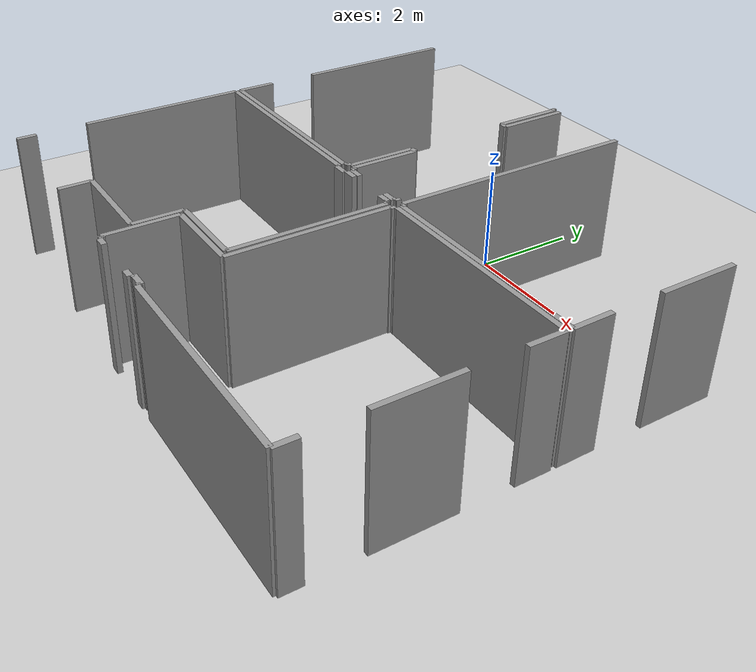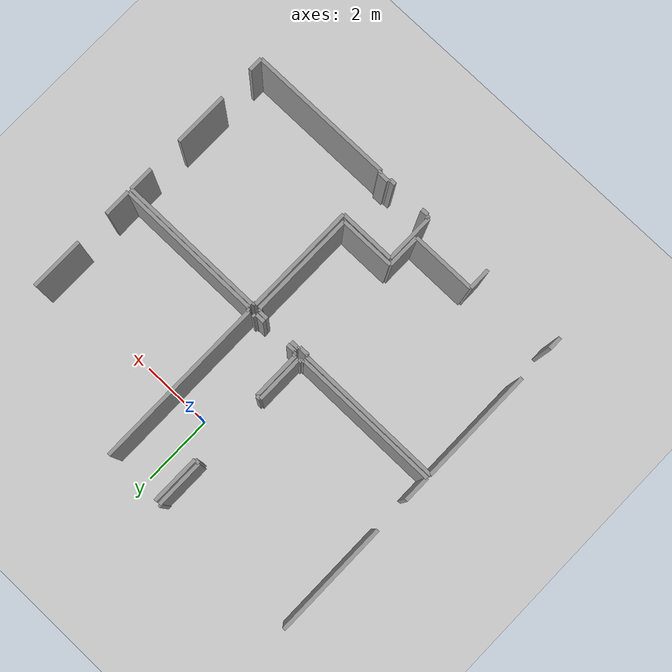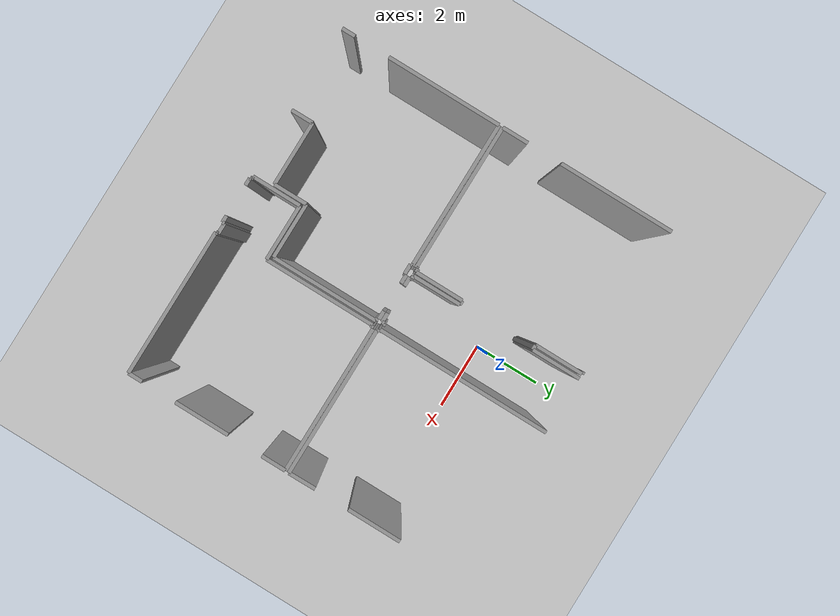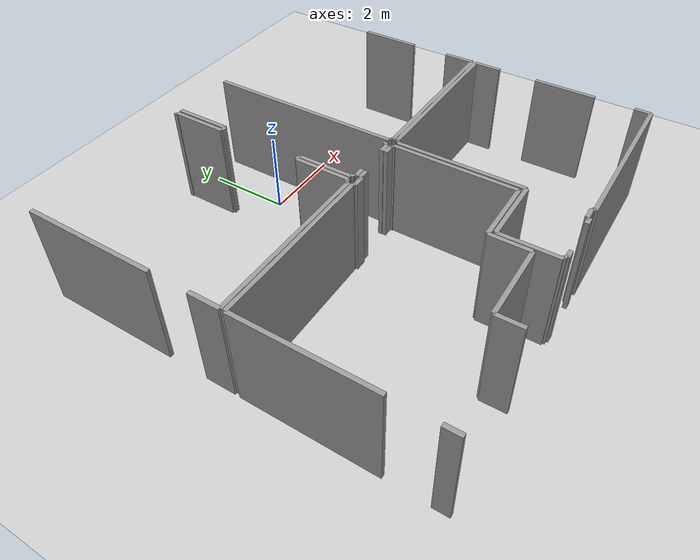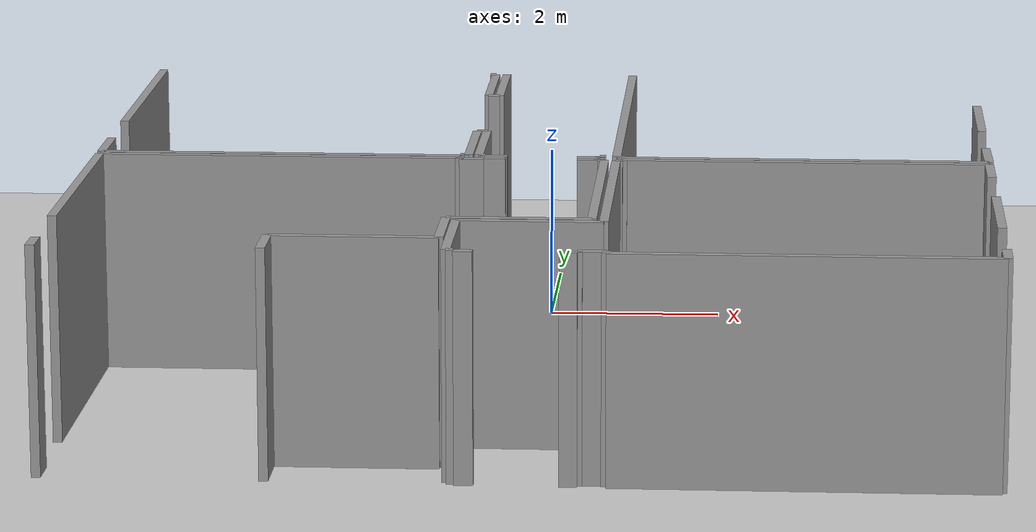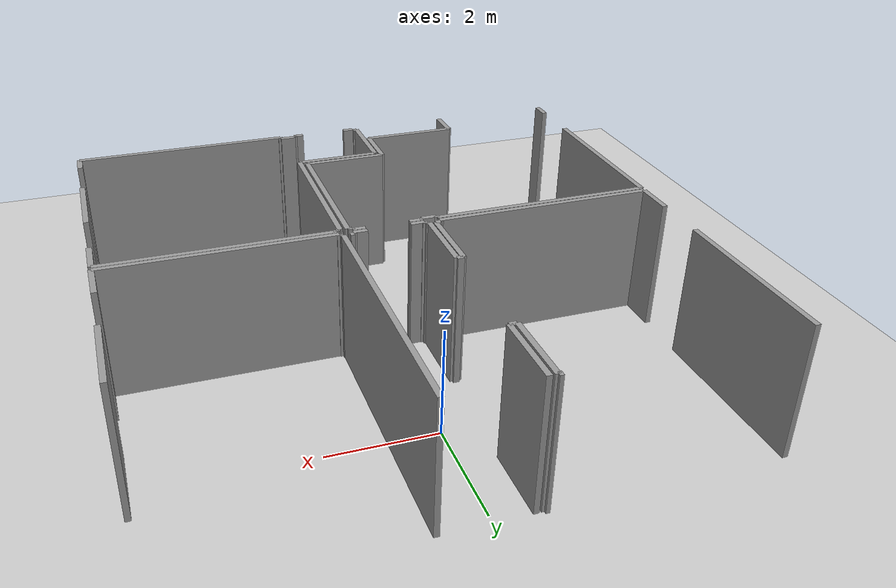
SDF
<sdf version="1.6">
 <world name="default">
  <model name="ground_plane">
   <static>1</static>
   <link name="link">
    <collision name="collision">
     <geometry><plane><normal>0 0 1</normal><size>100 100</size></plane></geometry>
     <surface><friction><ode><mu>100</mu><mu2>50</mu2></ode></friction></surface>
    </collision>
    <visual name="visual">
     <cast_shadows>0</cast_shadows>
     <geometry><plane><normal>0 0 1</normal><size>100 100</size></plane></geometry>
     <material>
      <script><uri>file://media/materials/scripts/gazebo.material</uri><name>Gazebo/Grey</name></script>
     </material>
    </visual>
   </link>
  </model>
  <model name="50009419">
   <static>1</static>
   <link name="Wall_42">
    <collision name="Wall_42_Collision">
     <geometry><box><size>0.260232248239 0.1 2.5</size></box></geometry>
     <pose>0.13011612412 0 1.25 0 0 0</pose>
    </collision>
    <visual name="Wall_42_Visual">
     <pose>0.13011612412 0 1.25 0 0 0</pose>
     <geometry><box><size>0.260232248239 0.1 2.5</size></box></geometry>
     <material>
      <script><uri>file://media/materials/scripts/gazebo.material</uri><name>Gazebo/Grey</name></script>
      <ambient>1 1 1 1</ambient>
     </material>
    </visual>
    <pose>5.69395266197 -12.6954756012 0 0 0 3.14159265359</pose>
   </link>
   <link name="Wall_43">
    <collision name="Wall_43_Collision">
     <geometry><box><size>0.255409607209 0.1 2.5</size></box></geometry>
     <pose>0.127704803604 0 1.25 0 0 0</pose>
    </collision>
    <visual name="Wall_43_Visual">
     <pose>0.127704803604 0 1.25 0 0 0</pose>
     <geometry><box><size>0.255409607209 0.1 2.5</size></box></geometry>
     <material>
      <script><uri>file://media/materials/scripts/gazebo.material</uri><name>Gazebo/Grey</name></script>
      <ambient>1 1 1 1</ambient>
     </material>
    </visual>
    <pose>4.64312456374 -12.6954756012 0 0 0 3.14159265359</pose>
   </link>
   <link name="Wall_44">
    <collision name="Wall_44_Collision">
     <geometry><box><size>0.0626943333968 0.1 2.5</size></box></geometry>
     <pose>0.0313471666984 0 1.25 0 0 0</pose>
    </collision>
    <visual name="Wall_44_Visual">
     <pose>0.0313471666984 0 1.25 0 0 0</pose>
     <geometry><box><size>0.0626943333968 0.1 2.5</size></box></geometry>
     <material>
      <script><uri>file://media/materials/scripts/gazebo.material</uri><name>Gazebo/Grey</name></script>
      <ambient>1 1 1 1</ambient>
     </material>
    </visual>
    <pose>4.38771495653 -12.6954756012 0 0 0 1.57079632679</pose>
   </link>
   <link name="Wall_45">
    <collision name="Wall_45_Collision">
     <geometry><box><size>0.0741163779428 0.1 2.5</size></box></geometry>
     <pose>0.0370581889714 0 1.25 0 0 0</pose>
    </collision>
    <visual name="Wall_45_Visual">
     <pose>0.0370581889714 0 1.25 0 0 0</pose>
     <geometry><box><size>0.0741163779428 0.1 2.5</size></box></geometry>
     <material>
      <script><uri>file://media/materials/scripts/gazebo.material</uri><name>Gazebo/Grey</name></script>
      <ambient>1 1 1 1</ambient>
     </material>
    </visual>
    <pose>4.38771495653 -12.6327812678 0 0 0 3.14159265359</pose>
   </link>
   <link name="Wall_46">
    <collision name="Wall_46_Collision">
     <geometry><box><size>1.34824544705 0.1 2.5</size></box></geometry>
     <pose>0.674122723523 0 1.25 0 0 0</pose>
    </collision>
    <visual name="Wall_46_Visual">
     <pose>0.674122723523 0 1.25 0 0 0</pose>
     <geometry><box><size>1.34824544705 0.1 2.5</size></box></geometry>
     <material>
      <script><uri>file://media/materials/scripts/gazebo.material</uri><name>Gazebo/Grey</name></script>
      <ambient>1 1 1 1</ambient>
     </material>
    </visual>
    <pose>4.31359857859 -12.6327812678 0 0 0 1.57079632679</pose>
   </link>
   <link name="Wall_47">
    <collision name="Wall_47_Collision">
     <geometry><box><size>0.115172282505 0.1 2.5</size></box></geometry>
     <pose>0.0575861412526 0 1.25 0 0 0</pose>
    </collision>
    <visual name="Wall_47_Visual">
     <pose>0.0575861412526 0 1.25 0 0 0</pose>
     <geometry><box><size>0.115172282505 0.1 2.5</size></box></geometry>
     <material>
      <script><uri>file://media/materials/scripts/gazebo.material</uri><name>Gazebo/Grey</name></script>
      <ambient>1 1 1 1</ambient>
     </material>
    </visual>
    <pose>4.31359857859 -11.2845358208 0 0 0 3.14159265359</pose>
   </link>
   <link name="Wall_48">
    <collision name="Wall_48_Collision">
     <geometry><box><size>1.33936163462 0.1 2.5</size></box></geometry>
     <pose>0.669680817311 0 1.25 0 0 0</pose>
    </collision>
    <visual name="Wall_48_Visual">
     <pose>0.669680817311 0 1.25 0 0 0</pose>
     <geometry><box><size>1.33936163462 0.1 2.5</size></box></geometry>
     <material>
      <script><uri>file://media/materials/scripts/gazebo.material</uri><name>Gazebo/Grey</name></script>
      <ambient>1 1 1 1</ambient>
     </material>
    </visual>
    <pose>4.19842629608 -11.2845358208 0 0 0 -1.57079632679</pose>
   </link>
   <link name="Wall_49">
    <collision name="Wall_49_Collision">
     <geometry><box><size>0.0930896630497 0.1 2.5</size></box></geometry>
     <pose>0.0465448315248 0 1.25 0 0 0</pose>
    </collision>
    <visual name="Wall_49_Visual">
     <pose>0.0465448315248 0 1.25 0 0 0</pose>
     <geometry><box><size>0.0930896630497 0.1 2.5</size></box></geometry>
     <material>
      <script><uri>file://media/materials/scripts/gazebo.material</uri><name>Gazebo/Grey</name></script>
      <ambient>1 1 1 1</ambient>
     </material>
    </visual>
    <pose>4.19842629608 -12.6238974554 0 0 0 3.14159265359</pose>
   </link>
   <link name="Wall_50">
    <collision name="Wall_50_Collision">
     <geometry><box><size>0.063075068215 0.1 2.5</size></box></geometry>
     <pose>0.0315375341075 0 1.25 0 0 0</pose>
    </collision>
    <visual name="Wall_50_Visual">
     <pose>0.0315375341075 0 1.25 0 0 0</pose>
     <geometry><box><size>0.063075068215 0.1 2.5</size></box></geometry>
     <material>
      <script><uri>file://media/materials/scripts/gazebo.material</uri><name>Gazebo/Grey</name></script>
      <ambient>1 1 1 1</ambient>
     </material>
    </visual>
    <pose>4.10533663304 -12.6238974554 0 0 0 -1.57079632679</pose>
   </link>
   <link name="Wall_51">
    <collision name="Wall_51_Collision">
     <geometry><box><size>4.09759502507 0.1 2.5</size></box></geometry>
     <pose>2.04879751253 0 1.25 0 0 0</pose>
    </collision>
    <visual name="Wall_51_Visual">
     <pose>2.04879751253 0 1.25 0 0 0</pose>
     <geometry><box><size>4.09759502507 0.1 2.5</size></box></geometry>
     <material>
      <script><uri>file://media/materials/scripts/gazebo.material</uri><name>Gazebo/Grey</name></script>
      <ambient>1 1 1 1</ambient>
     </material>
    </visual>
    <pose>4.10533663304 -12.6869725236 0 0 0 3.14159265359</pose>
   </link>
   <link name="Wall_52">
    <collision name="Wall_52_Collision">
     <geometry><box><size>0.736023859382 0.1 2.5</size></box></geometry>
     <pose>0.368011929691 0 1.25 0 0 0</pose>
    </collision>
    <visual name="Wall_52_Visual">
     <pose>0.368011929691 0 1.25 0 0 0</pose>
     <geometry><box><size>0.736023859382 0.1 2.5</size></box></geometry>
     <material>
      <script><uri>file://media/materials/scripts/gazebo.material</uri><name>Gazebo/Grey</name></script>
      <ambient>1 1 1 1</ambient>
     </material>
    </visual>
    <pose>0.00774160797005 -12.6869725236 0 0 0 1.57079632679</pose>
   </link>
   <link name="Wall_53">
    <collision name="Wall_53_Collision">
     <geometry><box><size>3.2217145758 0.1 2.5</size></box></geometry>
     <pose>1.6108572879 0 1.25 0 0 0</pose>
    </collision>
    <visual name="Wall_53_Visual">
     <pose>1.6108572879 0 1.25 0 0 0</pose>
     <geometry><box><size>3.2217145758 0.1 2.5</size></box></geometry>
     <material>
      <script><uri>file://media/materials/scripts/gazebo.material</uri><name>Gazebo/Grey</name></script>
      <ambient>1 1 1 1</ambient>
     </material>
    </visual>
    <pose>0.00774160797005 -10.9786153944 0 0 0 1.57079632679</pose>
   </link>
   <link name="Wall_56">
    <collision name="Wall_56_Collision">
     <geometry><box><size>0.0698648391395 0.1 2.5</size></box></geometry>
     <pose>0.0349324195698 0 1.25 0 0 0</pose>
    </collision>
    <visual name="Wall_56_Visual">
     <pose>0.0349324195698 0 1.25 0 0 0</pose>
     <geometry><box><size>0.0698648391395 0.1 2.5</size></box></geometry>
     <material>
      <script><uri>file://media/materials/scripts/gazebo.material</uri><name>Gazebo/Grey</name></script>
      <ambient>1 1 1 1</ambient>
     </material>
    </visual>
    <pose>4.11117456691 -7.80639634495 0 0 0 0.0</pose>
   </link>
   <link name="Wall_57">
    <collision name="Wall_57_Collision">
     <geometry><box><size>1.35027603274 0.1 2.5</size></box></geometry>
     <pose>0.675138016372 0 1.25 0 0 0</pose>
    </collision>
    <visual name="Wall_57_Visual">
     <pose>0.675138016372 0 1.25 0 0 0</pose>
     <geometry><box><size>1.35027603274 0.1 2.5</size></box></geometry>
     <material>
      <script><uri>file://media/materials/scripts/gazebo.material</uri><name>Gazebo/Grey</name></script>
      <ambient>1 1 1 1</ambient>
     </material>
    </visual>
    <pose>4.18103940605 -7.80639634495 0 0 0 -1.57079632679</pose>
   </link>
   <link name="Wall_58">
    <collision name="Wall_58_Collision">
     <geometry><box><size>0.132495716733 0.1 2.5</size></box></geometry>
     <pose>0.0662478583666 0 1.25 0 0 0</pose>
    </collision>
    <visual name="Wall_58_Visual">
     <pose>0.0662478583666 0 1.25 0 0 0</pose>
     <geometry><box><size>0.132495716733 0.1 2.5</size></box></geometry>
     <material>
      <script><uri>file://media/materials/scripts/gazebo.material</uri><name>Gazebo/Grey</name></script>
      <ambient>1 1 1 1</ambient>
     </material>
    </visual>
    <pose>4.18103940605 -9.15667237769 0 0 0 0.0</pose>
   </link>
   <link name="Wall_59">
    <collision name="Wall_59_Collision">
     <geometry><box><size>1.35655815724 0.1 2.5</size></box></geometry>
     <pose>0.678279078622 0 1.25 0 0 0</pose>
    </collision>
    <visual name="Wall_59_Visual">
     <pose>0.678279078622 0 1.25 0 0 0</pose>
     <geometry><box><size>1.35655815724 0.1 2.5</size></box></geometry>
     <material>
      <script><uri>file://media/materials/scripts/gazebo.material</uri><name>Gazebo/Grey</name></script>
      <ambient>1 1 1 1</ambient>
     </material>
    </visual>
    <pose>4.31353512279 -9.15667237769 0 0 0 1.57079632679</pose>
   </link>
   <link name="Wall_67">
    <collision name="Wall_67_Collision">
     <geometry><box><size>0.0685957230789 0.1 2.5</size></box></geometry>
     <pose>0.0342978615394 0 1.25 0 0 0</pose>
    </collision>
    <visual name="Wall_67_Visual">
     <pose>0.0342978615394 0 1.25 0 0 0</pose>
     <geometry><box><size>0.0685957230789 0.1 2.5</size></box></geometry>
     <material>
      <script><uri>file://media/materials/scripts/gazebo.material</uri><name>Gazebo/Grey</name></script>
      <ambient>1 1 1 1</ambient>
     </material>
    </visual>
    <pose>5.75924868329 -12.626943334 0 0 0 3.14159265359</pose>
   </link>
   <link name="Wall_68">
    <collision name="Wall_68_Collision">
     <geometry><box><size>0.0686116585549 0.1 2.5</size></box></geometry>
     <pose>0.0343058292775 0 1.25 0 0 0</pose>
    </collision>
    <visual name="Wall_68_Visual">
     <pose>0.0343058292775 0 1.25 0 0 0</pose>
     <geometry><box><size>0.0686116585549 0.1 2.5</size></box></geometry>
     <material>
      <script><uri>file://media/materials/scripts/gazebo.material</uri><name>Gazebo/Grey</name></script>
      <ambient>1 1 1 1</ambient>
     </material>
    </visual>
    <pose>5.69065296021 -12.626943334 0 0 0 -1.52268533337</pose>
   </link>
   <link name="Wall_69">
    <collision name="Wall_69_Collision">
     <geometry><box><size>4.13979313408 0.1 2.5</size></box></geometry>
     <pose>2.06989656704 0 1.25 0 0 0</pose>
    </collision>
    <visual name="Wall_69_Visual">
     <pose>2.06989656704 0 1.25 0 0 0</pose>
     <geometry><box><size>4.13979313408 0.1 2.5</size></box></geometry>
     <material>
      <script><uri>file://media/materials/scripts/gazebo.material</uri><name>Gazebo/Grey</name></script>
      <ambient>1 1 1 1</ambient>
     </material>
    </visual>
    <pose>10.0811599721 -12.6976330985 0 0 0 3.14159265359</pose>
   </link>
   <link name="Wall_70">
    <collision name="Wall_70_Collision">
     <geometry><box><size>0.0643441842757 0.1 2.5</size></box></geometry>
     <pose>0.0321720921378 0 1.25 0 0 0</pose>
    </collision>
    <visual name="Wall_70_Visual">
     <pose>0.0321720921378 0 1.25 0 0 0</pose>
     <geometry><box><size>0.0643441842757 0.1 2.5</size></box></geometry>
     <material>
      <script><uri>file://media/materials/scripts/gazebo.material</uri><name>Gazebo/Grey</name></script>
      <ambient>1 1 1 1</ambient>
     </material>
    </visual>
    <pose>5.941366838 -12.6976330985 0 0 0 1.57079632679</pose>
   </link>
   <link name="Wall_71">
    <collision name="Wall_71_Collision">
     <geometry><box><size>0.0607272035028 0.1 2.5</size></box></geometry>
     <pose>0.0303636017514 0 1.25 0 0 0</pose>
    </collision>
    <visual name="Wall_71_Visual">
     <pose>0.0303636017514 0 1.25 0 0 0</pose>
     <geometry><box><size>0.0607272035028 0.1 2.5</size></box></geometry>
     <material>
      <script><uri>file://media/materials/scripts/gazebo.material</uri><name>Gazebo/Grey</name></script>
      <ambient>1 1 1 1</ambient>
     </material>
    </visual>
    <pose>5.941366838 -12.6332889143 0 0 0 3.14159265359</pose>
   </link>
   <link name="Wall_72">
    <collision name="Wall_72_Collision">
     <geometry><box><size>4.83222285678 0.1 2.5</size></box></geometry>
     <pose>2.41611142839 0 1.25 0 0 0</pose>
    </collision>
    <visual name="Wall_72_Visual">
     <pose>2.41611142839 0 1.25 0 0 0</pose>
     <geometry><box><size>4.83222285678 0.1 2.5</size></box></geometry>
     <material>
      <script><uri>file://media/materials/scripts/gazebo.material</uri><name>Gazebo/Grey</name></script>
      <ambient>1 1 1 1</ambient>
     </material>
    </visual>
    <pose>5.88063963449 -12.6332889143 0 0 0 1.57079632679</pose>
   </link>
   <link name="Wall_78">
    <collision name="Wall_78_Collision">
     <geometry><box><size>1.5019988578 0.1 2.5</size></box></geometry>
     <pose>0.750999428898 0 1.25 0 0 0</pose>
    </collision>
    <visual name="Wall_78_Visual">
     <pose>0.750999428898 0 1.25 0 0 0</pose>
     <geometry><box><size>1.5019988578 0.1 2.5</size></box></geometry>
     <material>
      <script><uri>file://media/materials/scripts/gazebo.material</uri><name>Gazebo/Grey</name></script>
      <ambient>1 1 1 1</ambient>
     </material>
    </visual>
    <pose>10.0715781458 -9.46792309157 0 0 0 -1.57079632679</pose>
   </link>
   <link name="Wall_79">
    <collision name="Wall_79_Collision">
     <geometry><box><size>0.759753298163 0.1 2.5</size></box></geometry>
     <pose>0.379876649081 0 1.25 0 0 0</pose>
    </collision>
    <visual name="Wall_79_Visual">
     <pose>0.379876649081 0 1.25 0 0 0</pose>
     <geometry><box><size>0.759753298163 0.1 2.5</size></box></geometry>
     <material>
      <script><uri>file://media/materials/scripts/gazebo.material</uri><name>Gazebo/Grey</name></script>
      <ambient>1 1 1 1</ambient>
     </material>
    </visual>
    <pose>10.0715781458 -11.9379402246 0 0 0 -1.55818423244</pose>
   </link>
   <link name="Wall_81">
    <collision name="Wall_81_Collision">
     <geometry><box><size>0.375214163335 0.1 2.5</size></box></geometry>
     <pose>0.187607081668 0 1.25 0 0 0</pose>
    </collision>
    <visual name="Wall_81_Visual">
     <pose>0.187607081668 0 1.25 0 0 0</pose>
     <geometry><box><size>0.375214163335 0.1 2.5</size></box></geometry>
     <material>
      <script><uri>file://media/materials/scripts/gazebo.material</uri><name>Gazebo/Grey</name></script>
      <ambient>1 1 1 1</ambient>
     </material>
    </visual>
    <pose>0.00412462719716 -17.3842248874 0 0 0 1.57079632679</pose>
   </link>
   <link name="Wall_82">
    <collision name="Wall_82_Collision">
     <geometry><box><size>3.2238720731 0.1 2.5</size></box></geometry>
     <pose>1.61193603655 0 1.25 0 0 0</pose>
    </collision>
    <visual name="Wall_82_Visual">
     <pose>1.61193603655 0 1.25 0 0 0</pose>
     <geometry><box><size>3.2238720731 0.1 2.5</size></box></geometry>
     <material>
      <script><uri>file://media/materials/scripts/gazebo.material</uri><name>Gazebo/Grey</name></script>
      <ambient>1 1 1 1</ambient>
     </material>
    </visual>
    <pose>0.00412462719716 -16.021257694 0 0 0 1.57079632679</pose>
   </link>
   <link name="Wall_83">
    <collision name="Wall_83_Collision">
     <geometry><box><size>4.10520972143 0.1 2.5</size></box></geometry>
     <pose>2.05260486071 0 1.25 0 0 0</pose>
    </collision>
    <visual name="Wall_83_Visual">
     <pose>2.05260486071 0 1.25 0 0 0</pose>
     <geometry><box><size>4.10520972143 0.1 2.5</size></box></geometry>
     <material>
      <script><uri>file://media/materials/scripts/gazebo.material</uri><name>Gazebo/Grey</name></script>
      <ambient>1 1 1 1</ambient>
     </material>
    </visual>
    <pose>0.00412462719716 -12.7973856209 0 0 0 0.0</pose>
   </link>
   <link name="Wall_84">
    <collision name="Wall_84_Collision">
     <geometry><box><size>0.0500666285932 0.1 2.5</size></box></geometry>
     <pose>0.0250333142966 0 1.25 0 0 0</pose>
    </collision>
    <visual name="Wall_84_Visual">
     <pose>0.0250333142966 0 1.25 0 0 0</pose>
     <geometry><box><size>0.0500666285932 0.1 2.5</size></box></geometry>
     <material>
      <script><uri>file://media/materials/scripts/gazebo.material</uri><name>Gazebo/Grey</name></script>
      <ambient>1 1 1 1</ambient>
     </material>
    </visual>
    <pose>4.10933434863 -12.7973856209 0 0 0 -1.57079632679</pose>
   </link>
   <link name="Wall_85">
    <collision name="Wall_85_Collision">
     <geometry><box><size>0.275398185164 0.1 2.5</size></box></geometry>
     <pose>0.137699092582 0 1.25 0 0 0</pose>
    </collision>
    <visual name="Wall_85_Visual">
     <pose>0.137699092582 0 1.25 0 0 0</pose>
     <geometry><box><size>0.275398185164 0.1 2.5</size></box></geometry>
     <material>
      <script><uri>file://media/materials/scripts/gazebo.material</uri><name>Gazebo/Grey</name></script>
      <ambient>1 1 1 1</ambient>
     </material>
    </visual>
    <pose>4.10933434863 -12.8474522495 0 0 0 0.0</pose>
   </link>
   <link name="Wall_86">
    <collision name="Wall_86_Collision">
     <geometry><box><size>0.045878545593 0.1 2.5</size></box></geometry>
     <pose>0.0229392727965 0 1.25 0 0 0</pose>
    </collision>
    <visual name="Wall_86_Visual">
     <pose>0.0229392727965 0 1.25 0 0 0</pose>
     <geometry><box><size>0.045878545593 0.1 2.5</size></box></geometry>
     <material>
      <script><uri>file://media/materials/scripts/gazebo.material</uri><name>Gazebo/Grey</name></script>
      <ambient>1 1 1 1</ambient>
     </material>
    </visual>
    <pose>4.38473253379 -12.8474522495 0 0 0 1.57079632679</pose>
   </link>
   <link name="Wall_87">
    <collision name="Wall_87_Collision">
     <geometry><box><size>0.246145059966 0.1 2.5</size></box></geometry>
     <pose>0.123072529983 0 1.25 0 0 0</pose>
    </collision>
    <visual name="Wall_87_Visual">
     <pose>0.123072529983 0 1.25 0 0 0</pose>
     <geometry><box><size>0.246145059966 0.1 2.5</size></box></geometry>
     <material>
      <script><uri>file://media/materials/scripts/gazebo.material</uri><name>Gazebo/Grey</name></script>
      <ambient>1 1 1 1</ambient>
     </material>
    </visual>
    <pose>4.38473253379 -12.8015737039 0 0 0 0.0</pose>
   </link>
   <link name="Wall_88">
    <collision name="Wall_88_Collision">
     <geometry><box><size>0.236626689511 0.1 2.5</size></box></geometry>
     <pose>0.118313344755 0 1.25 0 0 0</pose>
    </collision>
    <visual name="Wall_88_Visual">
     <pose>0.118313344755 0 1.25 0 0 0</pose>
     <geometry><box><size>0.236626689511 0.1 2.5</size></box></geometry>
     <material>
      <script><uri>file://media/materials/scripts/gazebo.material</uri><name>Gazebo/Grey</name></script>
      <ambient>1 1 1 1</ambient>
     </material>
    </visual>
    <pose>5.43981217082 -12.8015737039 0 0 0 0.0</pose>
   </link>
   <link name="Wall_89">
    <collision name="Wall_89_Collision">
     <geometry><box><size>0.0463227362142 0.1 2.5</size></box></geometry>
     <pose>0.0231613681071 0 1.25 0 0 0</pose>
    </collision>
    <visual name="Wall_89_Visual">
     <pose>0.0231613681071 0 1.25 0 0 0</pose>
     <geometry><box><size>0.0463227362142 0.1 2.5</size></box></geometry>
     <material>
      <script><uri>file://media/materials/scripts/gazebo.material</uri><name>Gazebo/Grey</name></script>
      <ambient>1 1 1 1</ambient>
     </material>
    </visual>
    <pose>5.67643886033 -12.8015737039 0 0 0 -1.57079632679</pose>
   </link>
   <link name="Wall_90">
    <collision name="Wall_90_Collision">
     <geometry><box><size>0.07259343867 0.1 2.5</size></box></geometry>
     <pose>0.036296719335 0 1.25 0 0 0</pose>
    </collision>
    <visual name="Wall_90_Visual">
     <pose>0.036296719335 0 1.25 0 0 0</pose>
     <geometry><box><size>0.07259343867 0.1 2.5</size></box></geometry>
     <material>
      <script><uri>file://media/materials/scripts/gazebo.material</uri><name>Gazebo/Grey</name></script>
      <ambient>1 1 1 1</ambient>
     </material>
    </visual>
    <pose>5.67643886033 -12.8478964401 0 0 0 0.0</pose>
   </link>
   <link name="Wall_91">
    <collision name="Wall_91_Collision">
     <geometry><box><size>2.98578590012 0.1 2.5</size></box></geometry>
     <pose>1.49289295006 0 1.25 0 0 0</pose>
    </collision>
    <visual name="Wall_91_Visual">
     <pose>1.49289295006 0 1.25 0 0 0</pose>
     <geometry><box><size>2.98578590012 0.1 2.5</size></box></geometry>
     <material>
      <script><uri>file://media/materials/scripts/gazebo.material</uri><name>Gazebo/Grey</name></script>
      <ambient>1 1 1 1</ambient>
     </material>
    </visual>
    <pose>5.749032299 -12.8478964401 0 0 0 -1.57079632679</pose>
   </link>
   <link name="Wall_92">
    <collision name="Wall_92_Collision">
     <geometry><box><size>1.55206548639 0.1 2.5</size></box></geometry>
     <pose>0.776032743194 0 1.25 0 0 0</pose>
    </collision>
    <visual name="Wall_92_Visual">
     <pose>0.776032743194 0 1.25 0 0 0</pose>
     <geometry><box><size>1.55206548639 0.1 2.5</size></box></geometry>
     <material>
      <script><uri>file://media/materials/scripts/gazebo.material</uri><name>Gazebo/Grey</name></script>
      <ambient>1 1 1 1</ambient>
     </material>
    </visual>
    <pose>5.749032299 -15.8336823403 0 0 0 3.14159265359</pose>
   </link>
   <link name="Wall_93">
    <collision name="Wall_93_Collision">
     <geometry><box><size>0.93578272733 0.1 2.5</size></box></geometry>
     <pose>0.467891363665 0 1.25 0 0 0</pose>
    </collision>
    <visual name="Wall_93_Visual">
     <pose>0.467891363665 0 1.25 0 0 0</pose>
     <geometry><box><size>0.93578272733 0.1 2.5</size></box></geometry>
     <material>
      <script><uri>file://media/materials/scripts/gazebo.material</uri><name>Gazebo/Grey</name></script>
      <ambient>1 1 1 1</ambient>
     </material>
    </visual>
    <pose>4.19696681262 -15.8336823403 0 0 0 -1.57079632679</pose>
   </link>
   <link name="Wall_94">
    <collision name="Wall_94_Collision">
     <geometry><box><size>1.80106605749 0.1 2.5</size></box></geometry>
     <pose>0.900533028745 0 1.25 0 0 0</pose>
    </collision>
    <visual name="Wall_94_Visual">
     <pose>0.900533028745 0 1.25 0 0 0</pose>
     <geometry><box><size>1.80106605749 0.1 2.5</size></box></geometry>
     <material>
      <script><uri>file://media/materials/scripts/gazebo.material</uri><name>Gazebo/Grey</name></script>
      <ambient>1 1 1 1</ambient>
     </material>
    </visual>
    <pose>4.19696681262 -16.7694650676 0 0 0 3.14159265359</pose>
   </link>
   <link name="Wall_95">
    <collision name="Wall_95_Collision">
     <geometry><box><size>0.61476705415 0.1 2.5</size></box></geometry>
     <pose>0.307383527075 0 1.25 0 0 0</pose>
    </collision>
    <visual name="Wall_95_Visual">
     <pose>0.307383527075 0 1.25 0 0 0</pose>
     <geometry><box><size>0.61476705415 0.1 2.5</size></box></geometry>
     <material>
      <script><uri>file://media/materials/scripts/gazebo.material</uri><name>Gazebo/Grey</name></script>
      <ambient>1 1 1 1</ambient>
     </material>
    </visual>
    <pose>2.39590075512 -16.7694650676 0 0 0 -1.56594500234</pose>
   </link>
   <link name="Wall_107">
    <collision name="Wall_107_Collision">
     <geometry><box><size>4.10381369376 0.1 2.5</size></box></geometry>
     <pose>2.05190684688 0 1.25 0 0 0</pose>
    </collision>
    <visual name="Wall_107_Visual">
     <pose>2.05190684688 0 1.25 0 0 0</pose>
     <geometry><box><size>4.10381369376 0.1 2.5</size></box></geometry>
     <material>
      <script><uri>file://media/materials/scripts/gazebo.material</uri><name>Gazebo/Grey</name></script>
      <ambient>1 1 1 1</ambient>
     </material>
    </visual>
    <pose>10.0739894663 -17.3797829812 0 0 0 3.14159265359</pose>
   </link>
   <link name="Wall_108">
    <collision name="Wall_108_Collision">
     <geometry><box><size>0.0678977092455 0.1 2.5</size></box></geometry>
     <pose>0.0339488546228 0 1.25 0 0 0</pose>
    </collision>
    <visual name="Wall_108_Visual">
     <pose>0.0339488546228 0 1.25 0 0 0</pose>
     <geometry><box><size>0.0678977092455 0.1 2.5</size></box></geometry>
     <material>
      <script><uri>file://media/materials/scripts/gazebo.material</uri><name>Gazebo/Grey</name></script>
      <ambient>1 1 1 1</ambient>
     </material>
    </visual>
    <pose>5.97017577257 -17.3797829812 0 0 0 1.57079632679</pose>
   </link>
   <link name="Wall_109">
    <collision name="Wall_109_Collision">
     <geometry><box><size>0.295894409544 0.1 2.5</size></box></geometry>
     <pose>0.147947204772 0 1.25 0 0 0</pose>
    </collision>
    <visual name="Wall_109_Visual">
     <pose>0.147947204772 0 1.25 0 0 0</pose>
     <geometry><box><size>0.295894409544 0.1 2.5</size></box></geometry>
     <material>
      <script><uri>file://media/materials/scripts/gazebo.material</uri><name>Gazebo/Grey</name></script>
      <ambient>1 1 1 1</ambient>
     </material>
    </visual>
    <pose>5.97017577257 -17.3118852719 0 0 0 3.14159265359</pose>
   </link>
   <link name="Wall_110">
    <collision name="Wall_110_Collision">
     <geometry><box><size>0.0572371343359 0.1 2.5</size></box></geometry>
     <pose>0.028618567168 0 1.25 0 0 0</pose>
    </collision>
    <visual name="Wall_110_Visual">
     <pose>0.028618567168 0 1.25 0 0 0</pose>
     <geometry><box><size>0.0572371343359 0.1 2.5</size></box></geometry>
     <material>
      <script><uri>file://media/materials/scripts/gazebo.material</uri><name>Gazebo/Grey</name></script>
      <ambient>1 1 1 1</ambient>
     </material>
    </visual>
    <pose>5.67428136303 -17.3118852719 0 0 0 -1.57079632679</pose>
   </link>
   <link name="Wall_111">
    <collision name="Wall_111_Collision">
     <geometry><box><size>0.189288660448 0.1 2.5</size></box></geometry>
     <pose>0.094644330224 0 1.25 0 0 0</pose>
    </collision>
    <visual name="Wall_111_Visual">
     <pose>0.094644330224 0 1.25 0 0 0</pose>
     <geometry><box><size>0.189288660448 0.1 2.5</size></box></geometry>
     <material>
      <script><uri>file://media/materials/scripts/gazebo.material</uri><name>Gazebo/Grey</name></script>
      <ambient>1 1 1 1</ambient>
     </material>
    </visual>
    <pose>5.67428136303 -17.3691224062 0 0 0 3.14159265359</pose>
   </link>
   <link name="Wall_112">
    <collision name="Wall_112_Collision">
     <geometry><box><size>0.203185481312 0.1 2.5</size></box></geometry>
     <pose>0.101592740656 0 1.25 0 0 0</pose>
    </collision>
    <visual name="Wall_112_Visual">
     <pose>0.101592740656 0 1.25 0 0 0</pose>
     <geometry><box><size>0.203185481312 0.1 2.5</size></box></geometry>
     <material>
      <script><uri>file://media/materials/scripts/gazebo.material</uri><name>Gazebo/Grey</name></script>
      <ambient>1 1 1 1</ambient>
     </material>
    </visual>
    <pose>4.59369249318 -17.3691224062 0 0 0 3.14159265359</pose>
   </link>
   <link name="Wall_113">
    <collision name="Wall_113_Collision">
     <geometry><box><size>0.0449267085475 0.1 2.5</size></box></geometry>
     <pose>0.0224633542737 0 1.25 0 0 0</pose>
    </collision>
    <visual name="Wall_113_Visual">
     <pose>0.0224633542737 0 1.25 0 0 0</pose>
     <geometry><box><size>0.0449267085475 0.1 2.5</size></box></geometry>
     <material>
      <script><uri>file://media/materials/scripts/gazebo.material</uri><name>Gazebo/Grey</name></script>
      <ambient>1 1 1 1</ambient>
     </material>
    </visual>
    <pose>4.39050701187 -17.3691224062 0 0 0 1.57079632679</pose>
   </link>
   <link name="Wall_114">
    <collision name="Wall_114_Collision">
     <geometry><box><size>0.0798274002157 0.1 2.5</size></box></geometry>
     <pose>0.0399137001079 0 1.25 0 0 0</pose>
    </collision>
    <visual name="Wall_114_Visual">
     <pose>0.0399137001079 0 1.25 0 0 0</pose>
     <geometry><box><size>0.0798274002157 0.1 2.5</size></box></geometry>
     <material>
      <script><uri>file://media/materials/scripts/gazebo.material</uri><name>Gazebo/Grey</name></script>
      <ambient>1 1 1 1</ambient>
     </material>
    </visual>
    <pose>4.39050701187 -17.3241956977 0 0 0 3.14159265359</pose>
   </link>
   <link name="Wall_115">
    <collision name="Wall_115_Collision">
     <geometry><box><size>1.37343740085 0.1 2.5</size></box></geometry>
     <pose>0.686718700425 0 1.25 0 0 0</pose>
    </collision>
    <visual name="Wall_115_Visual">
     <pose>0.686718700425 0 1.25 0 0 0</pose>
     <geometry><box><size>1.37343740085 0.1 2.5</size></box></geometry>
     <material>
      <script><uri>file://media/materials/scripts/gazebo.material</uri><name>Gazebo/Grey</name></script>
      <ambient>1 1 1 1</ambient>
     </material>
    </visual>
    <pose>4.31067961165 -17.3241956977 0 0 0 1.57079632679</pose>
   </link>
   <link name="Wall_116">
    <collision name="Wall_116_Collision">
     <geometry><box><size>1.57205406434 0.1 2.5</size></box></geometry>
     <pose>0.786027032172 0 1.25 0 0 0</pose>
    </collision>
    <visual name="Wall_116_Visual">
     <pose>0.786027032172 0 1.25 0 0 0</pose>
     <geometry><box><size>1.57205406434 0.1 2.5</size></box></geometry>
     <material>
      <script><uri>file://media/materials/scripts/gazebo.material</uri><name>Gazebo/Grey</name></script>
      <ambient>1 1 1 1</ambient>
     </material>
    </visual>
    <pose>4.31067961165 -15.9507582968 0 0 0 0.0</pose>
   </link>
   <link name="Wall_117">
    <collision name="Wall_117_Collision">
     <geometry><box><size>3.09448569072 0.1 2.5</size></box></geometry>
     <pose>1.54724284536 0 1.25 0 0 0</pose>
    </collision>
    <visual name="Wall_117_Visual">
     <pose>1.54724284536 0 1.25 0 0 0</pose>
     <geometry><box><size>3.09448569072 0.1 2.5</size></box></geometry>
     <material>
      <script><uri>file://media/materials/scripts/gazebo.material</uri><name>Gazebo/Grey</name></script>
      <ambient>1 1 1 1</ambient>
     </material>
    </visual>
    <pose>5.88273367599 -15.9507582968 0 0 0 1.57079632679</pose>
   </link>
   <link name="Wall_118">
    <collision name="Wall_118_Collision">
     <geometry><box><size>0.0741163779428 0.1 2.5</size></box></geometry>
     <pose>0.0370581889714 0 1.25 0 0 0</pose>
    </collision>
    <visual name="Wall_118_Visual">
     <pose>0.0370581889714 0 1.25 0 0 0</pose>
     <geometry><box><size>0.0741163779428 0.1 2.5</size></box></geometry>
     <material>
      <script><uri>file://media/materials/scripts/gazebo.material</uri><name>Gazebo/Grey</name></script>
      <ambient>1 1 1 1</ambient>
     </material>
    </visual>
    <pose>5.88273367599 -12.8562726061 0 0 0 0.0</pose>
   </link>
   <link name="Wall_119">
    <collision name="Wall_119_Collision">
     <geometry><box><size>0.0548892696237 0.1 2.5</size></box></geometry>
     <pose>0.0274446348119 0 1.25 0 0 0</pose>
    </collision>
    <visual name="Wall_119_Visual">
     <pose>0.0274446348119 0 1.25 0 0 0</pose>
     <geometry><box><size>0.0548892696237 0.1 2.5</size></box></geometry>
     <material>
      <script><uri>file://media/materials/scripts/gazebo.material</uri><name>Gazebo/Grey</name></script>
      <ambient>1 1 1 1</ambient>
     </material>
    </visual>
    <pose>5.95685005394 -12.8562726061 0 0 0 1.57079632679</pose>
   </link>
   <link name="Wall_120">
    <collision name="Wall_120_Collision">
     <geometry><box><size>4.11891617488 0.1 2.5</size></box></geometry>
     <pose>2.05945808744 0 1.25 0 0 0</pose>
    </collision>
    <visual name="Wall_120_Visual">
     <pose>2.05945808744 0 1.25 0 0 0</pose>
     <geometry><box><size>4.11891617488 0.1 2.5</size></box></geometry>
     <material>
      <script><uri>file://media/materials/scripts/gazebo.material</uri><name>Gazebo/Grey</name></script>
      <ambient>1 1 1 1</ambient>
     </material>
    </visual>
    <pose>5.95685005394 -12.8013833365 0 0 0 0.0</pose>
   </link>
   <link name="Wall_121">
    <collision name="Wall_121_Collision">
     <geometry><box><size>0.687924360683 0.1 2.5</size></box></geometry>
     <pose>0.343962180341 0 1.25 0 0 0</pose>
    </collision>
    <visual name="Wall_121_Visual">
     <pose>0.343962180341 0 1.25 0 0 0</pose>
     <geometry><box><size>0.687924360683 0.1 2.5</size></box></geometry>
     <material>
      <script><uri>file://media/materials/scripts/gazebo.material</uri><name>Gazebo/Grey</name></script>
      <ambient>1 1 1 1</ambient>
     </material>
    </visual>
    <pose>10.0757662288 -12.8013833365 0 0 0 -1.57079632679</pose>
   </link>
   <link name="Wall_122">
    <collision name="Wall_122_Collision">
     <geometry><box><size>1.53835903293 0.1 2.5</size></box></geometry>
     <pose>0.769179516467 0 1.25 0 0 0</pose>
    </collision>
    <visual name="Wall_122_Visual">
     <pose>0.769179516467 0 1.25 0 0 0</pose>
     <geometry><box><size>1.53835903293 0.1 2.5</size></box></geometry>
     <material>
      <script><uri>file://media/materials/scripts/gazebo.material</uri><name>Gazebo/Grey</name></script>
      <ambient>1 1 1 1</ambient>
     </material>
    </visual>
    <pose>10.0757662288 -14.4724919094 0 0 0 -1.57079632679</pose>
   </link>
   <link name="Wall_123">
    <collision name="Wall_123_Collision">
     <geometry><box><size>0.399014045349 0.1 2.5</size></box></geometry>
     <pose>0.199507022675 0 1.25 0 0 0</pose>
    </collision>
    <visual name="Wall_123_Visual">
     <pose>0.199507022675 0 1.25 0 0 0</pose>
     <geometry><box><size>0.399014045349 0.1 2.5</size></box></geometry>
     <material>
      <script><uri>file://media/materials/scripts/gazebo.material</uri><name>Gazebo/Grey</name></script>
      <ambient>1 1 1 1</ambient>
     </material>
    </visual>
    <pose>10.0757662288 -16.9807728917 0 0 0 -1.57524922357</pose>
   </link>
   <pose>-5.0 9.97398312076 0 0 0 0</pose>
  </model>
 </world>
</sdf>
